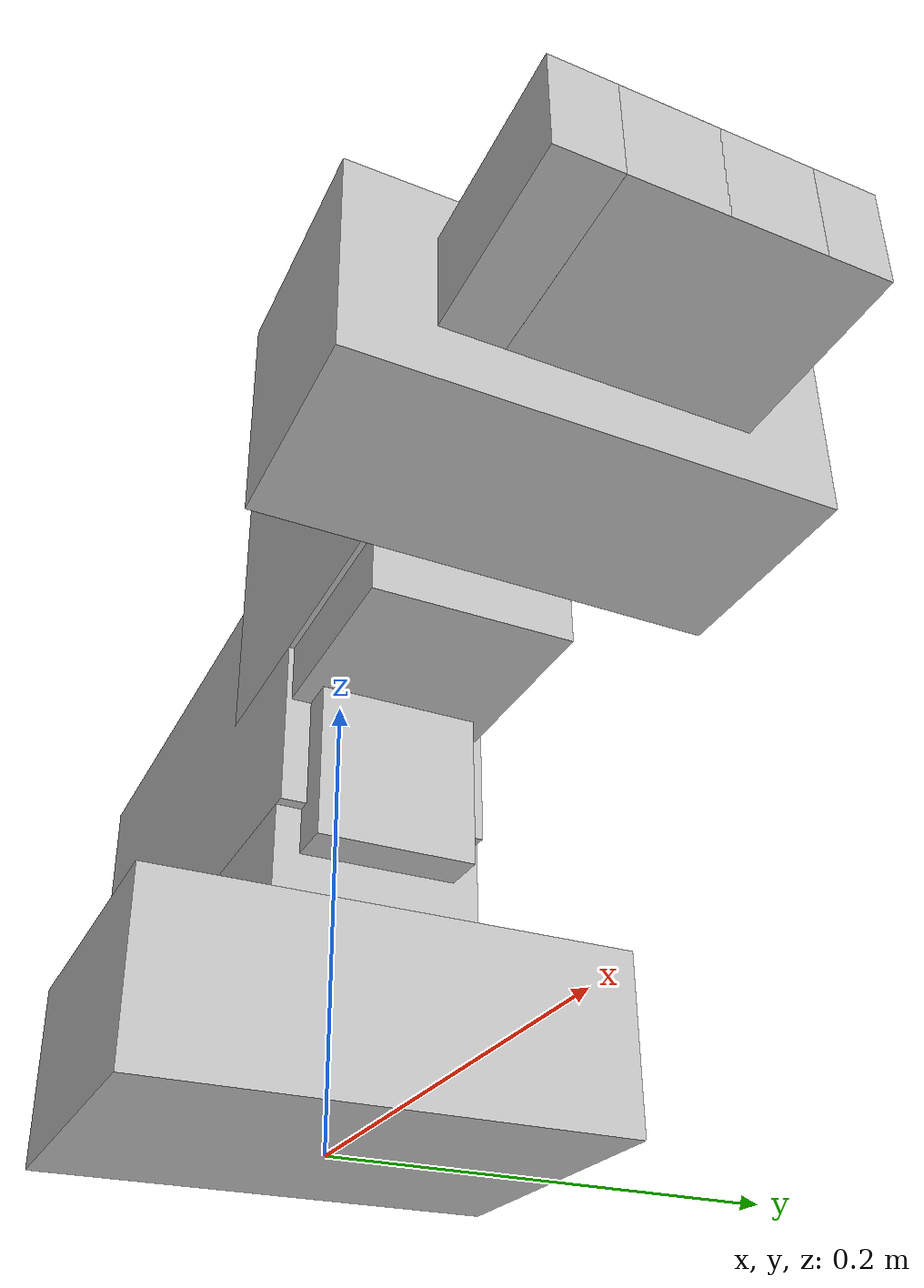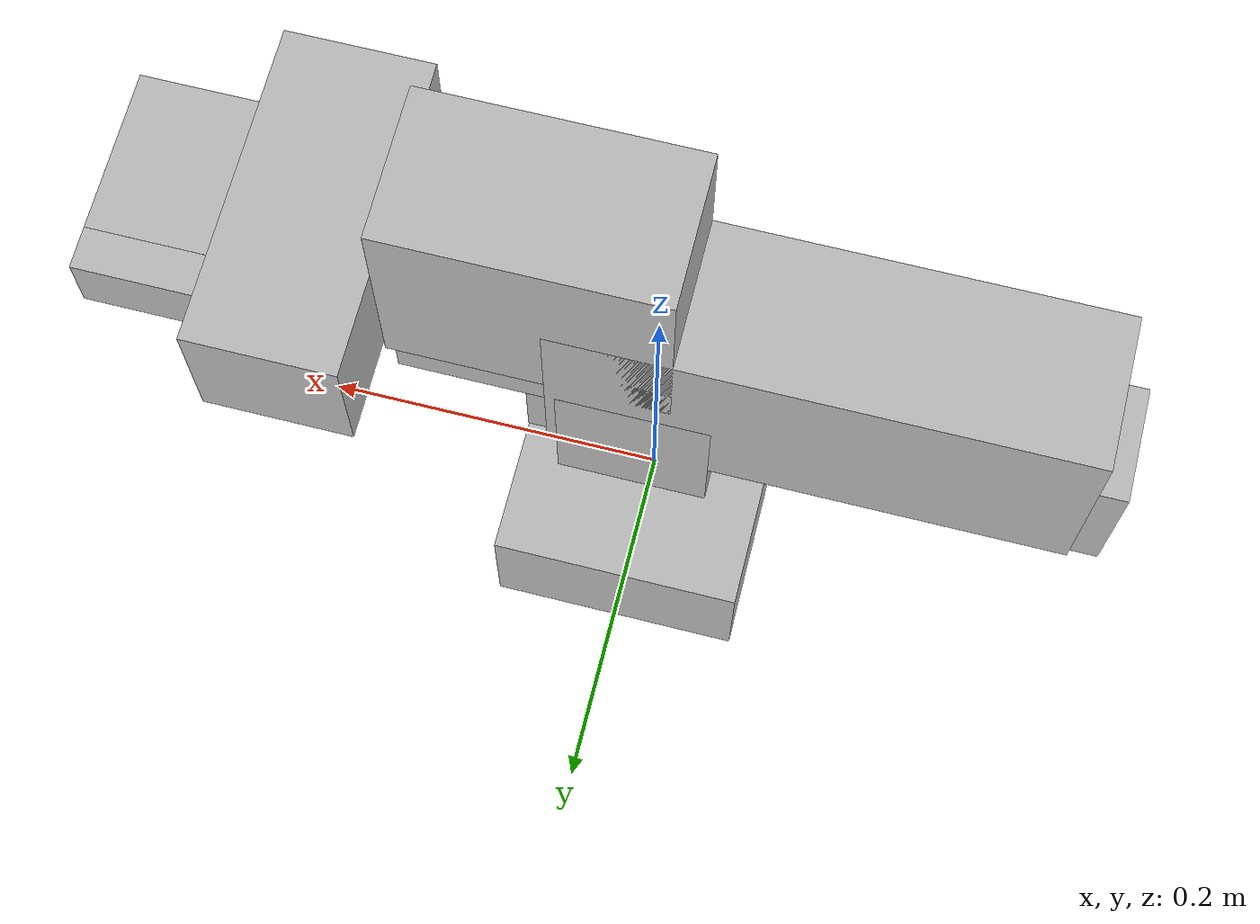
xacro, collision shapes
<?xml version="1.0"?>
<robot name="rebotarm" xmlns:xacro="http://www.ros.org/wiki/xacro">
  <xacro:arg name="model" default="rs"/>
  <xacro:arg name="transport" default="mock"/>
  <xacro:arg name="can_interface" default="can0"/>
  <xacro:arg name="allow_motor_enable" default="false"/>
  <xacro:arg name="hold_only" default="true"/>
  <xacro:arg name="enable_on_controller_start" default="false"/>
  <xacro:arg name="motor_enable_mask" default="0,0,0,0,0,0"/>
  <xacro:arg name="mujoco_headless" default="false"/>
  <xacro:arg name="control_mode" default="position"/>
  <xacro:arg name="sim_speed_factor" default="1.0"/>
  <xacro:arg name="enable_ft_sensor" default="true"/>
  <xacro:arg name="enable_camera" default="false"/>
  <xacro:property name="model" value="$(arg model)"/>
  <xacro:property name="transport" value="$(arg transport)"/>

  <xacro:if value="${model == 'dm'}">
    <xacro:include filename="$(find rebotarm_description)/urdf/dm/urdf/rebotarm_dm.urdf.xacro"/>
  </xacro:if>
  <xacro:if value="${model == 'rs'}">
    <xacro:include filename="$(find rebotarm_description)/urdf/rs/urdf/rebotarm_rs.urdf.xacro"/>
  </xacro:if>

  <xacro:include filename="$(find rebotarm_hardware)/ros2_control/rebotarm.ros2_control.xacro"/>

  <xacro:if value="${transport == 'mujoco'}">
    <link name="wrist_camera_link"/>
    <joint name="wrist_camera_joint" type="fixed">
      <parent link="gripper_tcp"/>
      <child link="wrist_camera_link"/>
      <origin xyz="0 0 0.03" rpy="0 0 0"/>
    </joint>
    <link name="wrist_camera_optical_frame"/>
    <joint name="wrist_camera_optical_joint" type="fixed">
      <parent link="wrist_camera_link"/>
      <child link="wrist_camera_optical_frame"/>
      <origin xyz="0 0 0" rpy="-1.570796 0 -1.570796"/>
    </joint>
    <link name="wrist_camera_mujoco_frame"/>
    <joint name="wrist_camera_mujoco_joint" type="fixed">
      <parent link="wrist_camera_optical_frame"/>
      <child link="wrist_camera_mujoco_frame"/>
      <origin xyz="0 0 0" rpy="3.141593 0 0"/>
    </joint>
  </xacro:if>
  <xacro:rebotarm_ros2_control
    model="${model}"
    transport="${transport}"
    can_interface="$(arg can_interface)"
    allow_motor_enable="$(arg allow_motor_enable)"
    hold_only="$(arg hold_only)"
    enable_on_controller_start="$(arg enable_on_controller_start)"
    motor_enable_mask="$(arg motor_enable_mask)"
    mujoco_headless="$(arg mujoco_headless)"
    control_mode="$(arg control_mode)"
    sim_speed_factor="$(arg sim_speed_factor)"
    enable_ft_sensor="$(arg enable_ft_sensor)"
    enable_camera="$(arg enable_camera)"/>
</robot>

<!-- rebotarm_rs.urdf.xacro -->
<robot xmlns:xacro="http://www.ros.org/wiki/xacro" name="rebotarm_rs">
  <xacro:include filename="$(find rebotarm_description)/urdf/rs/urdf/rebotarm_rs.urdf"/>
  <link name="base_footprint"/>
  <joint name="base_fixed_joint" type="fixed">
    <parent link="base_footprint"/>
    <child link="base_link"/>
  </joint>
  <link name="gripper_tcp"/>
  <joint name="gripper_tcp_joint" type="fixed">
    <origin xyz="0 0 0" rpy="0 0 0"/>
    <parent link="gripper_end"/>
    <child link="gripper_tcp"/>
  </joint>
</robot>

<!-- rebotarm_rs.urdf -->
<robot
  name="00-arm-rs_asm-v3">
  <link
    name="base_link">
    <inertial>
      <origin
        xyz="2.87641888266442E-06 -0.000122302488725115 0.0243376121934547"
        rpy="0 0 0" />
      <mass
        value="1.1774" />
      <inertia
        ixx="0.00133040"
        ixy="0.00000001"
        ixz="0.00000000"
        iyy="0.00213119"
        iyz="0.00000000"
        izz="0.00275877" />
    </inertial>
    <visual>
      <origin
        xyz="0 0 0"
        rpy="0 0 0" />
      <geometry>
        <mesh
          filename="package://rebotarm_description/urdf/rs/meshes/base_link.STL" />
      </geometry>
      <material
        name="">
        <color
          rgba="0.752941176470588 0.752941176470588 0.752941176470588 1" />
      </material>
    </visual>
    <collision>
      <origin
        xyz="0 0 0.0375"
        rpy="0 0 0" />
      <geometry>
        <box size="0.14 0.2 0.075" />
      </geometry>
    </collision>
  </link>
  <link
    name="link1">
    <inertial>
      <origin
        xyz="0.00817652280320541 0.00122584211922395 0.0331419658967293"
        rpy="0 0 0" />
      <mass
        value="0.4655" />
      <inertia
        ixx="0.00025207"
        ixy="0.00000000"
        ixz="-0.00002832"
        iyy="0.00015464"
        iyz="0.00000000"
        izz="0.00023416" />
    </inertial>
    <visual>
      <origin
        xyz="0 0 0"
        rpy="0 0 0" />
      <geometry>
        <mesh
          filename="package://rebotarm_description/urdf/rs/meshes/link1.STL" />
      </geometry>
      <material
        name="">
        <color
          rgba="0.752941176470588 0.752941176470588 0.752941176470588 1" />
      </material>
    </visual>
    <collision>
      <origin
        xyz="0.00457 0.00099 0.04349"
        rpy="0 0 0" />
      <geometry>
        <box size="0.08645 0.0865 0.10778" />
      </geometry>
    </collision>
  </link>
  <joint
    name="joint1"
    type="revolute">
    <origin
      xyz="-0.00034283 -0.00098683 0.075"
      rpy="0 0 0" />
    <parent
      link="base_link" />
    <child
      link="link1" />
    <axis
      xyz="0 0 -1" />
    <limit
      lower="-2.8"
      upper="2.8"
      effort="36"
      velocity="50" />
  </joint>
  <link
    name="link2">
    <inertial>
      <origin
        xyz="-0.117864812717456 -0.00342226413942967 -0.0271551938501484"
        rpy="0 0 0" />
      <mass
        value="1.972" />
      <inertia
        ixx="0.00073374"
        ixy="-0.00000043"
        ixz="0.00000851"
        iyy="0.01255987"
        iyz="0.00000128"
        izz="0.01281387" />
    </inertial>
    <visual>
      <origin
        xyz="0 0 0"
        rpy="0 0 0" />
      <geometry>
        <mesh
          filename="package://rebotarm_description/urdf/rs/meshes/motor_2_3.STL" />
      </geometry>
      <material
        name="">
        <color
          rgba="0.752941176470588 0.752941176470588 0.752941176470588 1" />
      </material>
    </visual>
    <visual>
      <origin
        xyz="0 0 0"
        rpy="0 0 0" />
      <geometry>
        <mesh
          filename="package://rebotarm_description/urdf/rs/meshes/cnc2.STL" />
      </geometry>
      <material
        name="">
        <color
          rgba="0.752941176470588 0.752941176470588 0.752941176470588 1" />
      </material>
    </visual>
    <visual>
      <origin
        xyz="0 0 0"
        rpy="0 0 0" />
      <geometry>
        <mesh
          filename="package://rebotarm_description/urdf/rs/meshes/pla2_black.STL" />
      </geometry>
      <material
        name="">
        <color
          rgba="0.752941176470588 0.752941176470588 0.752941176470588 1" />
      </material>
    </visual>
    <visual>
      <origin
        xyz="0 0 0"
        rpy="0 0 0" />
      <geometry>
        <mesh
          filename="package://rebotarm_description/urdf/rs/meshes/pla2_green.STL" />
      </geometry>
      <material
        name="">
        <color
          rgba="0.752941176470588 0.752941176470588 0.752941176470588 1" />
      </material>
    </visual>
    <collision>
      <origin
        xyz="-0.11637 0 -0.02625"
        rpy="0 0 0" />
      <geometry>
        <box size="0.32653 0.08812 0.0655" />
      </geometry>
    </collision>
  </link>
  <joint
    name="joint2"
    type="revolute">
    <origin
      xyz="0.020343 0.027237 0.07"
      rpy="-1.5708 0 0" />
    <parent
      link="link1" />
    <child
      link="link2" />
    <axis
      xyz="0 0 1" />
    <limit
      lower="0"
      upper="3.14"
      effort="36"
      velocity="50" />
  </joint>
  <link
    name="link3">
    <inertial>
      <origin
        xyz="0.103427154487799 -0.0664137912104635 -0.0271068687716704"
        rpy="0 0 0" />
      <mass
        value="1.062" />
      <inertia
        ixx="0.00046807"
        ixy="-0.00003456"
        ixz="-0.00004260"
        iyy="0.00632695"
        iyz="0.00000006"
        izz="0.00648221" />
    </inertial>
    <visual>
      <origin
        xyz="0 0 0"
        rpy="0 0 0" />
      <geometry>
        <mesh
          filename="package://rebotarm_description/urdf/rs/meshes/cnc3.STL" />
      </geometry>
      <material
        name="">
        <color
          rgba="0.752941176470588 0.752941176470588 0.752941176470588 1" />
      </material>
    </visual>
    <visual>
      <origin
        xyz="0 0 0"
        rpy="0 0 0" />
      <geometry>
        <mesh
          filename="package://rebotarm_description/urdf/rs/meshes/motor_4.STL" />
      </geometry>
      <material
        name="">
        <color
          rgba="0.752941176470588 0.752941176470588 0.752941176470588 1" />
      </material>
    </visual>
    <visual>
      <origin
        xyz="0 0 0"
        rpy="0 0 0" />
      <geometry>
        <mesh
          filename="package://rebotarm_description/urdf/rs/meshes/pla3_black.STL" />
      </geometry>
      <material
        name="">
        <color
          rgba="0.752941176470588 0.752941176470588 0.752941176470588 1" />
      </material>
    </visual>
    <visual>
      <origin
        xyz="0 0 0"
        rpy="0 0 0" />
      <geometry>
        <mesh
          filename="package://rebotarm_description/urdf/rs/meshes/pla3_green.STL" />
      </geometry>
      <material
        name="">
        <color
          rgba="0.752941176470588 0.752941176470588 0.752941176470588 1" />
      </material>
    </visual>
    <collision>
      <origin
        xyz="0.12204 -0.03962 -0.02625"
        rpy="0 0 0" />
      <geometry>
        <box size="0.29381 0.12925 0.0865" />
      </geometry>
    </collision>
  </link>
  <joint
    name="joint3"
    type="revolute">
    <origin
      xyz="-0.236 0 0"
      rpy="0 0 0" />
    <parent
      link="link2" />
    <child
      link="link3" />
    <axis
      xyz="0 0 -1" />
    <limit
      lower="0"
      upper="3.14"
      effort="36"
      velocity="50" />
  </joint>
  <link
    name="link4">
    <inertial>
      <origin
        xyz="0.0475544540775559 -0.0441113470158517 -0.0314111924918381"
        rpy="0 0 0" />
      <mass
        value="0.66" />
      <inertia
        ixx="0.00045986"
        ixy="0.00024219"
        ixz="-0.0"
        iyy="0.00075258"
        iyz="-0.0"
        izz="0.00066742" />
    </inertial>
    <visual>
      <origin
        xyz="0 0 0"
        rpy="0 0 0" />
      <geometry>
        <mesh
          filename="package://rebotarm_description/urdf/rs/meshes/motor_5.STL" />
      </geometry>
      <material
        name="">
        <color
          rgba="0.752941176470588 0.752941176470588 0.752941176470588 1" />
      </material>
    </visual>
    <visual>
      <origin
        xyz="0 0 0"
        rpy="0 0 0" />
      <geometry>
        <mesh
          filename="package://rebotarm_description/urdf/rs/meshes/cnc4.STL" />
      </geometry>
      <material
        name="">
        <color
          rgba="0.752941176470588 0.752941176470588 0.752941176470588 1" />
      </material>
    </visual>
    <collision>
      <origin
        xyz="0.04976 -0.03728 -0.03075"
        rpy="0 0 0" />
      <geometry>
        <box size="0.15639 0.13144 0.0865" />
      </geometry>
    </collision>
  </link>
  <joint
    name="joint4"
    type="revolute">
    <origin
      xyz="0.228 -0.072746 0.0045"
      rpy="0 0 0" />
    <parent
      link="link3" />
    <child
      link="link4" />
    <axis
      xyz="0 0 -1" />
    <limit
      lower="-1.57"
      upper="1.57"
      effort="14"
      velocity="40" />
  </joint>
  <link
    name="link5">
    <inertial>
      <origin
        xyz="0.0114400622356175 4.7907739316217E-06 0.0380487481818926"
        rpy="0 0 0" />
      <mass
        value="0.150120457182895" />
      <inertia
        ixx="7.34238025911107E-05"
        ixy="1.35700947009798E-08"
        ixz="-8.58146433770359E-07"
        iyy="5.5153884237714E-05"
        iyz="-1.32742144977931E-08"
        izz="5.29920095811017E-05" />
    </inertial>
    <visual>
      <origin
        xyz="0 0 0"
        rpy="0 0 0" />
      <geometry>
        <mesh
          filename="package://rebotarm_description/urdf/rs/meshes/motor_6.STL" />
      </geometry>
      <material
        name="">
        <color
          rgba="0.752941176470588 0.752941176470588 0.752941176470588 1" />
      </material>
    </visual>
    <visual>
      <origin
        xyz="0 0 0"
        rpy="0 0 0" />
      <geometry>
        <mesh
          filename="package://rebotarm_description/urdf/rs/meshes/cnc5.STL" />
      </geometry>
      <material
        name="">
        <color
          rgba="0.752941176470588 0.752941176470588 0.752941176470588 1" />
      </material>
    </visual>
    <visual>
      <origin
        xyz="0 0 0"
        rpy="0 0 0" />
      <geometry>
        <mesh
          filename="package://rebotarm_description/urdf/rs/meshes/pla5_green.STL" />
      </geometry>
      <material
        name="">
        <color
          rgba="0.752941176470588 0.752941176470588 0.752941176470588 1" />
      </material>
    </visual>
    <collision>
      <origin
        xyz="-0.0075 0.00005 0.04865"
        rpy="0 0 0" />
      <geometry>
        <box size="0.088 0.0818 0.1037" />
      </geometry>
    </collision>
  </link>
  <joint
    name="joint5"
    type="revolute">
    <origin
      xyz="0.087 -0.048 -0.03075"
      rpy="-1.5708 0 0" />
    <parent
      link="link4" />
    <child
      link="link5" />
    <axis
      xyz="0 0 -1" />
    <limit
      lower="-1.57"
      upper="1.57"
      effort="14"
      velocity="40" />
  </joint>
  <link
    name="link6">
    <inertial>
      <origin
        xyz="1.80196022567525E-05 2.48334592051007E-08 0.00434805764057547"
        rpy="0 0 0" />
      <mass
        value="0.03" />
      <inertia
        ixx="4.42273835852359E-06"
        ixy="3.16758463739482E-12"
        ixz="1.51852818442002E-10"
        iyy="4.37185522080034E-06"
        iyz="-2.21864017603015E-12"
        izz="8.54299378942051E-06" />
    </inertial>
    <visual>
      <origin
        xyz="0 0 0"
        rpy="0 0 0" />
      <geometry>
        <mesh
          filename="package://rebotarm_description/urdf/rs/meshes/link6.STL" />
      </geometry>
      <material
        name="">
        <color
          rgba="0.752941176470588 0.752941176470588 0.752941176470588 1" />
      </material>
    </visual>
    <collision>
      <origin
        xyz="0 0 0.00425"
        rpy="0 0 0" />
      <geometry>
        <box size="0.0568 0.0568 0.0095" />
      </geometry>
    </collision>
  </link>
  <joint
    name="joint6"
    type="revolute">
    <origin
      xyz="0.0365 0 0.048"
      rpy="0 1.5708 0" />
    <parent
      link="link5" />
    <child
      link="link6" />
    <axis
      xyz="0 0 -1" />
    <limit
      lower="-3.14"
      upper="3.14"
      effort="14"
      velocity="40" />
  </joint>
  <link
    name="gripper_end">
    <inertial>
      <origin
        xyz="-0.112751692515958 0.000128443070436966 -5.72602449749882E-06"
        rpy="0 0 0" />
      <mass
        value="0.65" />
      <inertia
        ixx="0.00037354"
        ixy="-0.00000011"
        ixz="0.00000050"
        iyy="0.00015830"
        iyz="0.00000348"
        izz="0.00045353" />
    </inertial>
    <visual>
      <origin
        xyz="0 0 0"
        rpy="0 0 0" />
      <geometry>
        <mesh
          filename="package://rebotarm_description/urdf/rs/meshes/pla7_green.STL" />
      </geometry>
      <material
        name="">
        <color
          rgba="0.752941176470588 0.752941176470588 0.752941176470588 1" />
      </material>
    </visual>
    <visual>
      <origin
        xyz="0 0 0"
        rpy="0 0 0" />
      <geometry>
        <mesh
          filename="package://rebotarm_description/urdf/rs/meshes/cnc7.STL" />
      </geometry>
      <material
        name="">
        <color
          rgba="0.752941176470588 0.752941176470588 0.752941176470588 1" />
      </material>
    </visual>
    <visual>
      <origin
        xyz="0 0 0"
        rpy="0 0 0" />
      <geometry>
        <mesh
          filename="package://rebotarm_description/urdf/rs/meshes/motor_7.STL" />
      </geometry>
      <material
        name="">
        <color
          rgba="0.752941176470588 0.752941176470588 0.752941176470588 1" />
      </material>
    </visual>
    <collision>
      <origin
        xyz="-0.11521 0 -0.00005"
        rpy="0 0 0" />
      <geometry>
        <box size="0.084 0.18407 0.0818" />
      </geometry>
    </collision>
  </link>
  <joint
    name="j_gripper_end"
    type="fixed">
    <origin
      xyz="0 0 0.16621"
      rpy="3.1416 -1.5708 0" />
    <parent
      link="link6" />
    <child
      link="gripper_end" />
    <axis
      xyz="0 0 0" />
  </joint>
  <link
    name="gripper_left">
    <inertial>
      <origin
        xyz="-0.00218008703135955 0.0187090355934181 0.00932188568692145"
        rpy="0 0 0" />
      <mass
        value="0.0752" />
      <inertia
        ixx="1.09877964176176E-05"
        ixy="0"
        ixz="0"
        iyy="9.50146036720166E-06"
        iyz="0"
        izz="9.30779991911125E-06" />
    </inertial>
    <visual>
      <origin
        xyz="0 0 0"
        rpy="0 0 0" />
      <geometry>
        <mesh
          filename="package://rebotarm_description/urdf/rs/meshes/pla_left.STL" />
      </geometry>
      <material
        name="">
        <color
          rgba="0.752941176470588 0.752941176470588 0.752941176470588 1" />
      </material>
    </visual>
    <visual>
      <origin
        xyz="0 0 0"
        rpy="0 0 0" />
      <geometry>
        <mesh
          filename="package://rebotarm_description/urdf/rs/meshes/cnc_left.STL" />
      </geometry>
      <material
        name="">
        <color
          rgba="0.752941176470588 0.752941176470588 0.752941176470588 1" />
      </material>
    </visual>
    <collision>
      <origin
        xyz="-0.00001 0.00237 -0.012"
        rpy="0 0 0" />
      <geometry>
        <box size="0.03844 0.08861 0.09335" />
      </geometry>
    </collision>
  </link>
  <joint
    name="gripper_joint1"
    type="prismatic">
    <origin
      xyz="-0.041939 -7.3385E-05 0"
      rpy="1.5708 -1.5708 0" />
    <parent
      link="gripper_end" />
    <child
      link="gripper_left" />
    <axis
      xyz="0 0 1" />
    <limit
      lower="0"
      upper="0.05"
      effort="500"
      velocity="10" />
  </joint>
  <link
    name="gripper_right">
    <inertial>
      <origin
        xyz="0.00218008703135955 -0.018709035593418 0.00932188568692151"
        rpy="0 0 0" />
      <mass
        value="0.0752" />
      <inertia
        ixx="1.09877964176176E-05"
        ixy="0"
        ixz="0"
        iyy="9.50146036720166E-06"
        iyz="0"
        izz="9.30779991911125E-06" />
    </inertial>
    <visual>
      <origin
        xyz="0 0 0"
        rpy="0 0 0" />
      <geometry>
        <mesh
          filename="package://rebotarm_description/urdf/rs/meshes/pla_right.STL" />
      </geometry>
      <material
        name="">
        <color
          rgba="0.752941176470588 0.752941176470588 0.752941176470588 1" />
      </material>
    </visual>
    <visual>
      <origin
        xyz="0 0 0"
        rpy="0 0 0" />
      <geometry>
        <mesh
          filename="package://rebotarm_description/urdf/rs/meshes/cnc_right.STL" />
      </geometry>
      <material
        name="">
        <color
          rgba="0.752941176470588 0.752941176470588 0.752941176470588 1" />
      </material>
    </visual>
    <collision>
      <origin
        xyz="0.00001 -0.00237 -0.012"
        rpy="0 0 0" />
      <geometry>
        <box size="0.03844 0.08861 0.09335" />
      </geometry>
    </collision>
  </link>
  <joint
    name="gripper_joint2"
    type="prismatic">
    <origin
      xyz="-0.041939 7.3385E-05 0"
      rpy="-1.5708 -1.5708 0" />
    <parent
      link="gripper_end" />
    <child
      link="gripper_right" />
    <axis
      xyz="0 0 1" />
    <mimic joint="gripper_joint1" multiplier="1.0" offset="0.0" />
    <limit
      lower="0"
      upper="0.05"
      effort="500"
      velocity="10" />
  </joint>
</robot>
